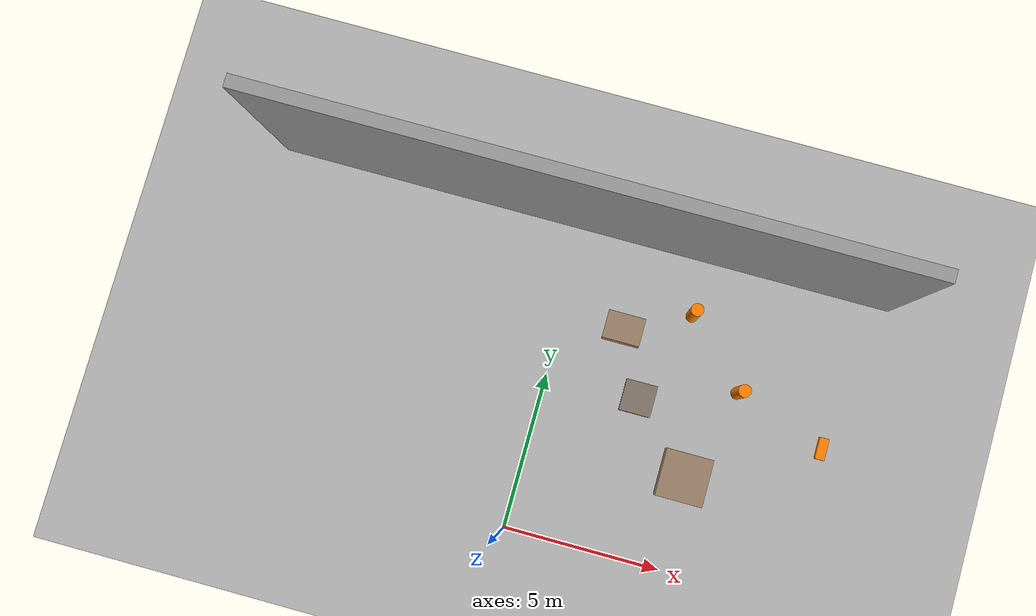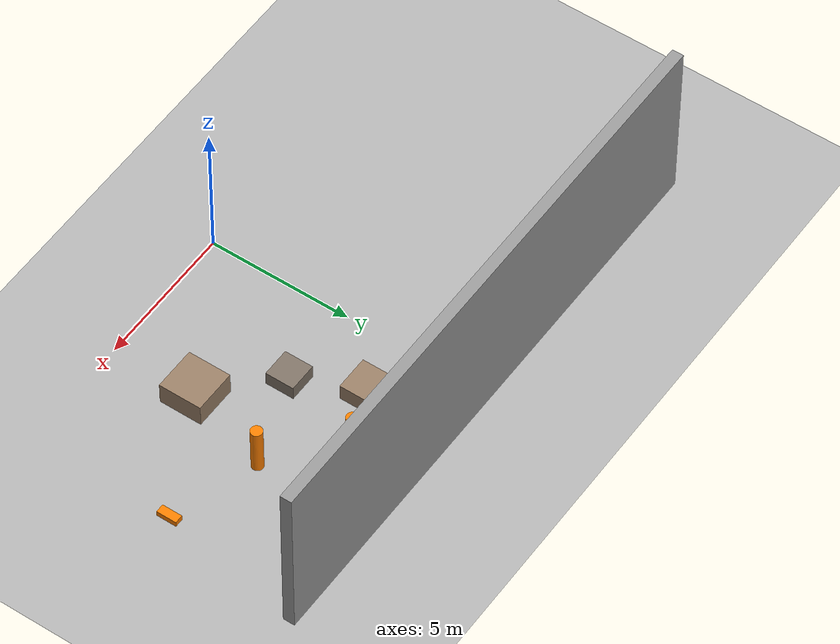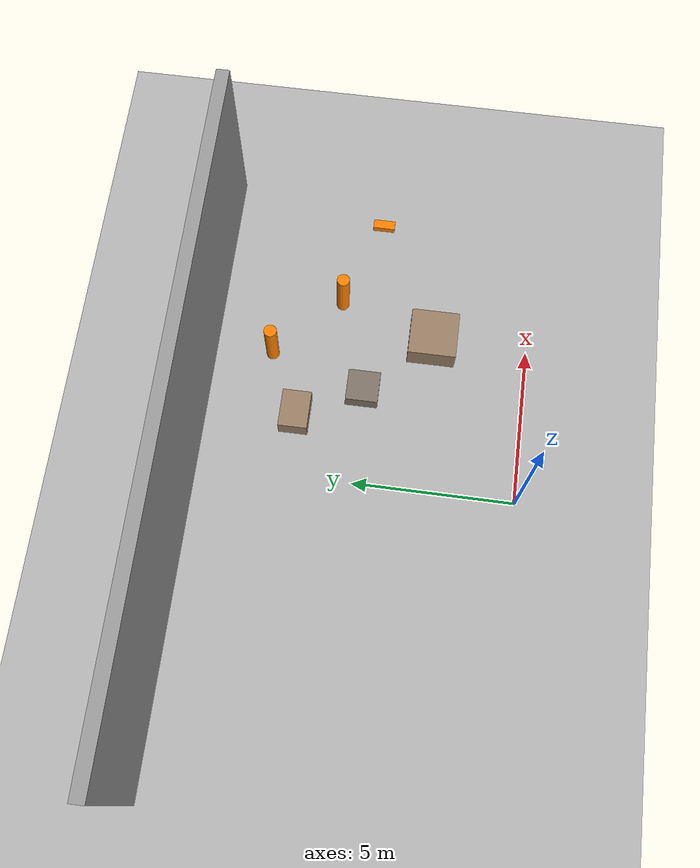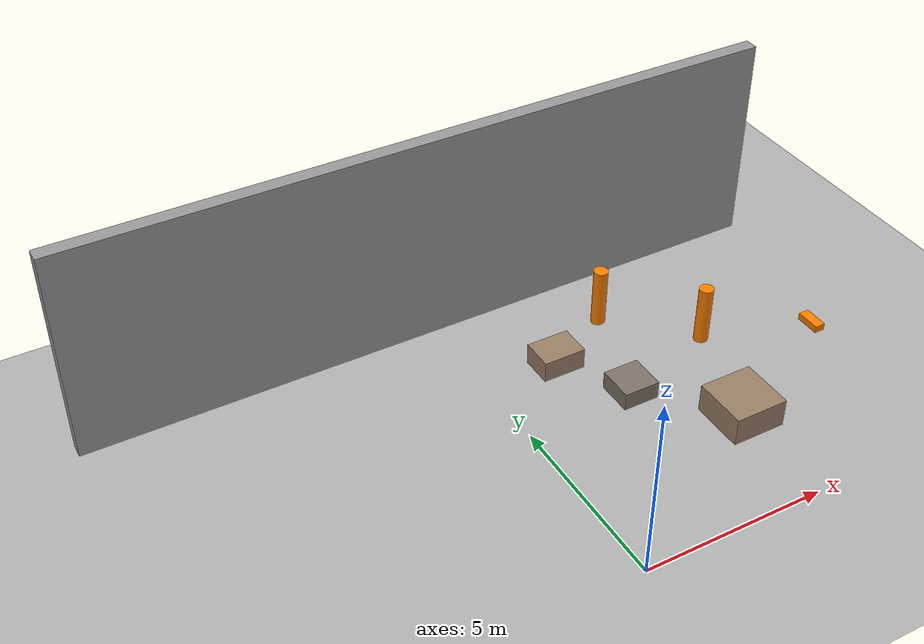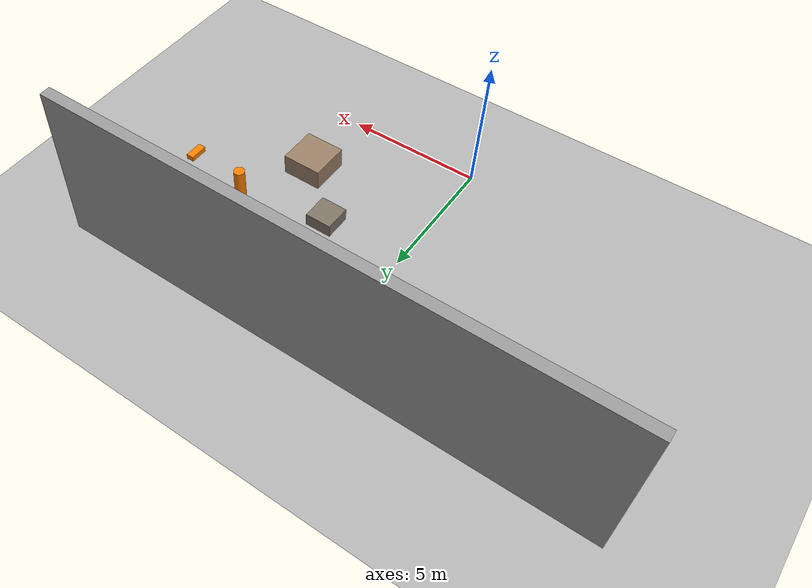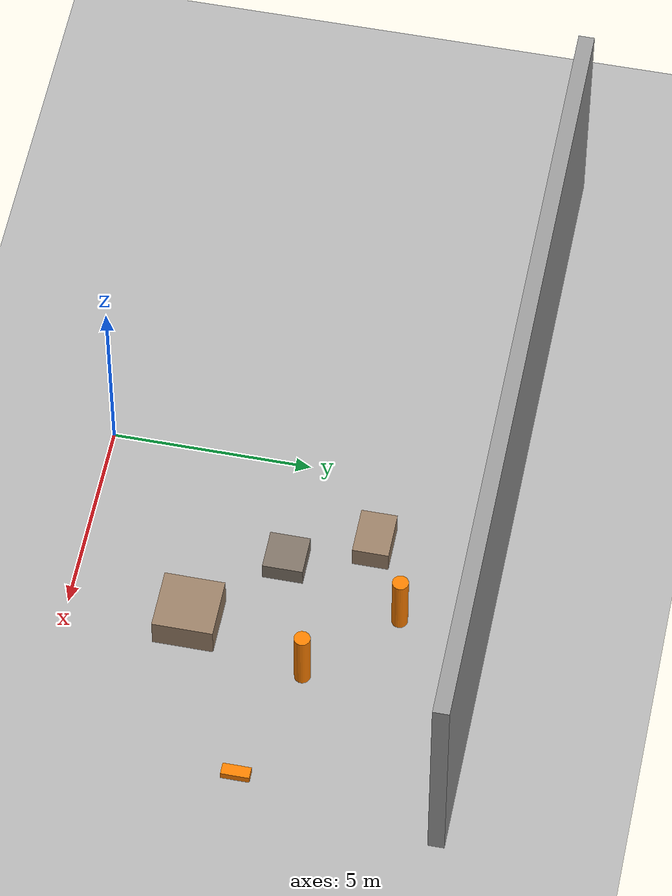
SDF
<?xml version="1.0"?>
<sdf version="1.9">
<world name="disaster_zone">

  <light name="sun" type="directional">
    <cast_shadows>true</cast_shadows>
    <pose>0 0 10 0 0 0</pose>
    <diffuse>1.0 1.0 1.0 1</diffuse>
    <specular>0.5 0.5 0.5 1</specular>
    <direction>-0.5 0.1 -0.9</direction>
  </light>

  <light name="fill" type="point">
    <pose>5 5 4 0 0 0</pose>
    <diffuse>0.6 0.6 0.6 1</diffuse>
    <specular>0.1 0.1 0.1 1</specular>
    <attenuation>
      <range>50</range>
      <constant>0.5</constant>
      <linear>0.01</linear>
      <quadratic>0.001</quadratic>
    </attenuation>
  </light>

  <model name="ground">
    <static>true</static>
    <link name="link">
      <collision name="col">
        <geometry><plane><normal>0 0 1</normal></plane></geometry>
      </collision>
      <visual name="vis">
        <geometry><plane><normal>0 0 1</normal><size>50 50</size></plane></geometry>
        <material>
          <ambient>0.6 0.6 0.6 1</ambient>
          <diffuse>0.7 0.7 0.7 1</diffuse>
        </material>
      </visual>
    </link>
  </model>

  <model name="rubble_1">
    <static>true</static>
    <pose>5 3 0.4 0 0 0</pose>
    <link name="link">
      <collision name="col">
        <geometry><box><size>1.5 1.5 0.8</size></box></geometry>
      </collision>
      <visual name="vis">
        <geometry><box><size>1.5 1.5 0.8</size></box></geometry>
        <material>
          <ambient>0.5 0.4 0.3 1</ambient>
          <diffuse>0.6 0.5 0.4 1</diffuse>
        </material>
      </visual>
    </link>
  </model>

  <model name="rubble_2">
    <static>true</static>
    <pose>2 7 0.3 0 0 0</pose>
    <link name="link">
      <collision name="col">
        <geometry><box><size>1.2 0.9 0.6</size></box></geometry>
      </collision>
      <visual name="vis">
        <geometry><box><size>1.2 0.9 0.6</size></box></geometry>
        <material>
          <ambient>0.5 0.4 0.3 1</ambient>
          <diffuse>0.6 0.5 0.4 1</diffuse>
        </material>
      </visual>
    </link>
  </model>

  <model name="survivor_1">
    <static>true</static>
    <pose>4 8 0.85 0 0 0</pose>
    <link name="link">
      <collision name="col">
        <geometry><cylinder><radius>0.2</radius><length>1.7</length></cylinder></geometry>
      </collision>
      <visual name="vis">
        <geometry><cylinder><radius>0.2</radius><length>1.7</length></cylinder></geometry>
        <material>
          <ambient>1.0 0.4 0.0 1</ambient>
          <diffuse>1.0 0.5 0.0 1</diffuse>
          <emissive>0.3 0.1 0.0 1</emissive>
        </material>
      </visual>
    </link>
  </model>

  <model name="survivor_2">
    <static>true</static>
    <pose>9 5 0.1 0 0 0</pose>
    <link name="link">
      <collision name="col">
        <geometry><box><size>0.3 0.7 0.2</size></box></geometry>
      </collision>
      <visual name="vis">
        <geometry><box><size>0.3 0.7 0.2</size></box></geometry>
        <material>
          <ambient>1.0 0.4 0.0 1</ambient>
          <diffuse>1.0 0.5 0.0 1</diffuse>
          <emissive>0.3 0.1 0.0 1</emissive>
        </material>
      </visual>
    </link>
  </model>

<model name="survivor_3">
  <static>true</static>
  <pose>6 6 0.85 0 0 0</pose>
  <link name="link">
    <collision name="col">
      <geometry><cylinder><radius>0.2</radius><length>1.7</length></cylinder></geometry>
    </collision>
    <visual name="vis">
      <geometry><cylinder><radius>0.2</radius><length>1.7</length></cylinder></geometry>
      <material>
        <ambient>1.0 0.4 0.0 1</ambient>
        <diffuse>1.0 0.5 0.0 1</diffuse>
      </material>
    </visual>
  </link>
</model>

<!-- Survivor buried under debris -->
<model name="survivor_4_buried">
  <static>true</static>
  <pose>3 5 0.1 0 0 0</pose>
  <link name="link">
    <collision name="col">
      <geometry><box><size>0.3 0.7 0.2</size></box></geometry>
    </collision>
    <visual name="vis">
      <geometry><box><size>0.3 0.7 0.2</size></box></geometry>
      <material>
        <ambient>1.0 0.3 0.0 1</ambient>
        <diffuse>1.0 0.4 0.0 1</diffuse>
      </material>
    </visual>
  </link>
</model>

<!-- Debris on top of survivor 4 -->
<model name="debris_on_survivor">
  <static>true</static>
  <pose>3 5 0.4 0 0 0</pose>
  <link name="link">
    <collision name="col">
      <geometry><box><size>1.0 1.0 0.5</size></box></geometry>
    </collision>
    <visual name="vis">
      <geometry><box><size>1.0 1.0 0.5</size></box></geometry>
      <material>
        <ambient>0.4 0.35 0.3 1</ambient>
        <diffuse>0.5 0.45 0.4 1</diffuse>
      </material>
    </visual>
  </link>
</model>

  <model name="wall_north">
    <static>true</static>
    <pose>0 10 3 0 0 0</pose>
    <link name="link">
      <collision name="col">
        <geometry><box><size>20 0.4 6</size></box></geometry>
      </collision>
      <visual name="vis">
        <geometry><box><size>20 0.4 6</size></box></geometry>
        <material>
          <ambient>0.5 0.5 0.5 1</ambient>
          <diffuse>0.6 0.6 0.6 1</diffuse>
        </material>
      </visual>
    </link>
  </model>

</world>
</sdf>
